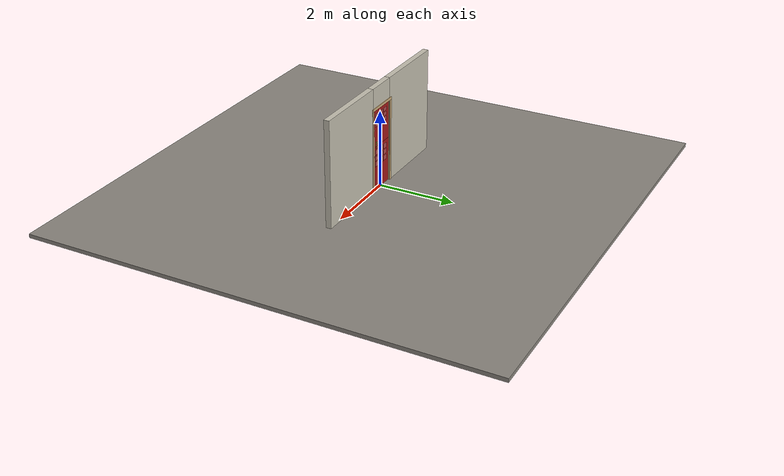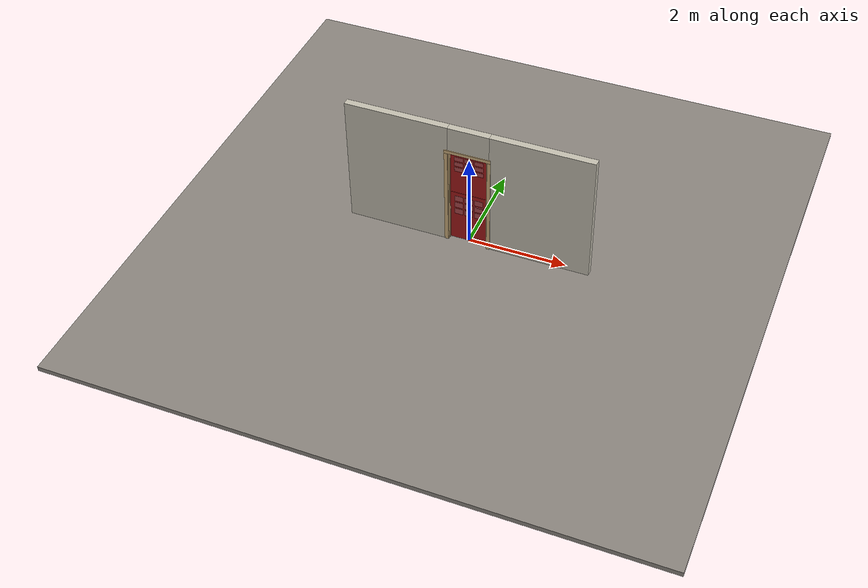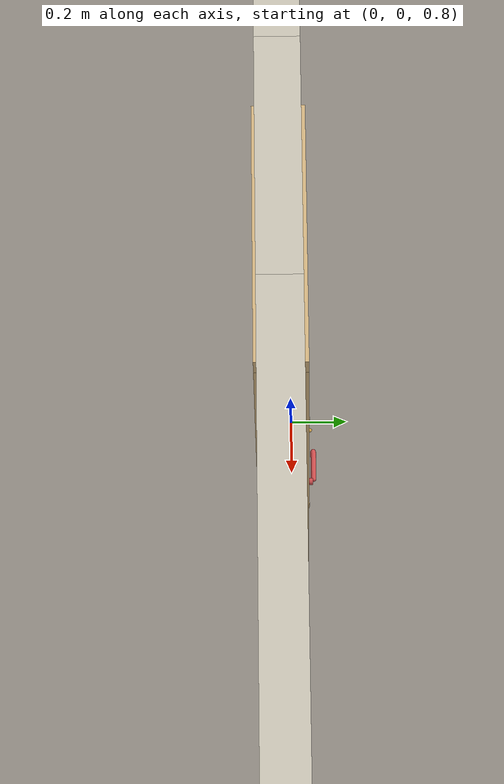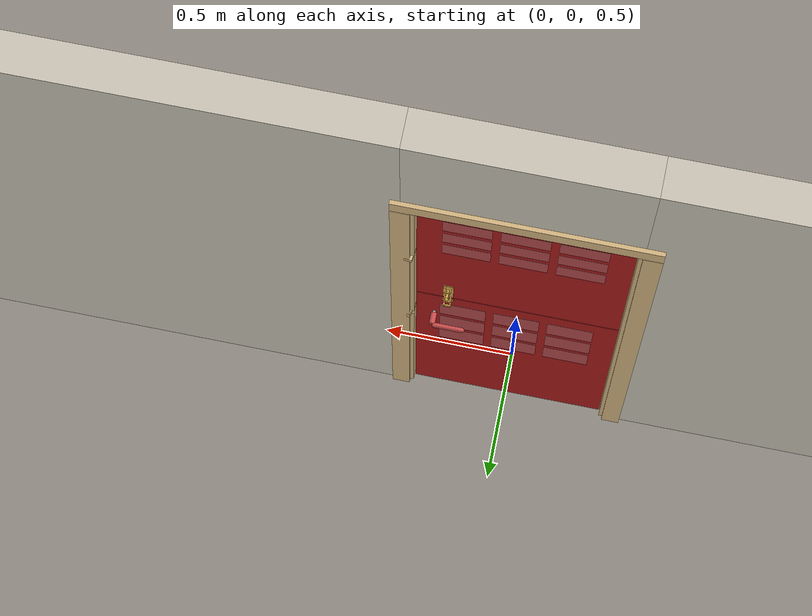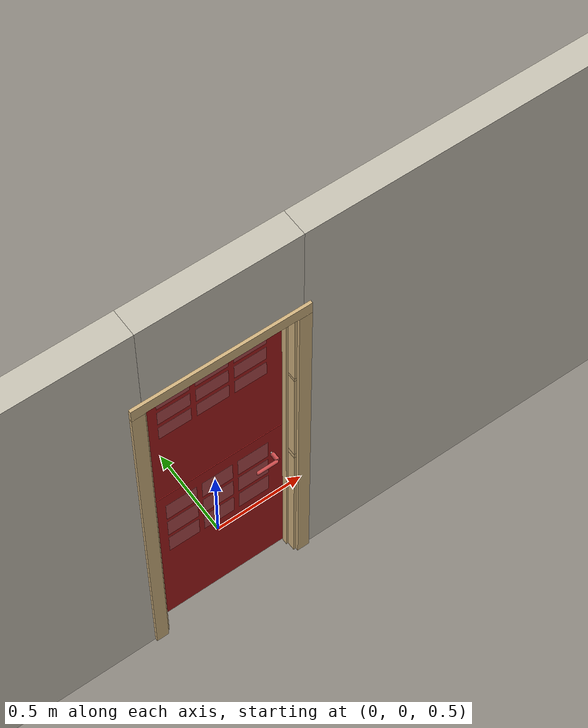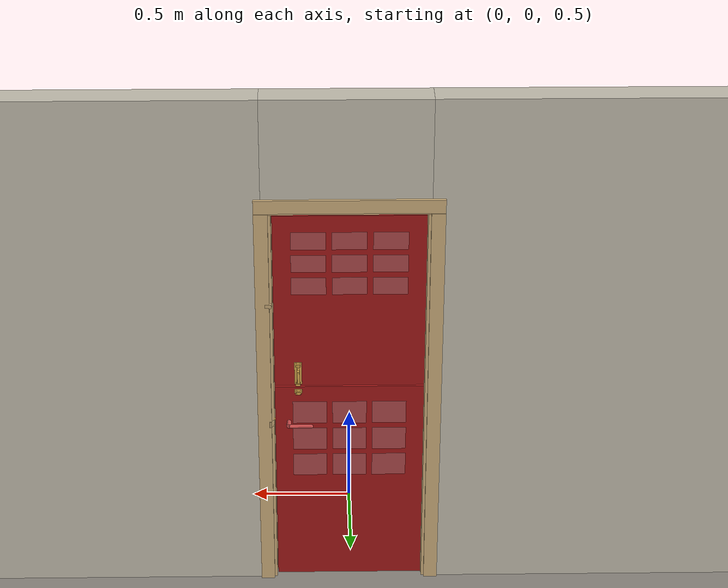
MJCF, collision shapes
<?xml version="1.0" ?>
<mujoco model="db0391_dutch_full">
  <compiler angle="radian" meshdir="../../hardware" texturedir="../../textures" autolimits="true" inertiafromgeom="false"/>
  <option timestep="0.002" integrator="implicitfast" cone="elliptic" impratio="10" noslip_iterations="3">
    <flag multiccd="enable"/>
  </option>
  <size memory="16M"/>
  <default>
    <geom condim="4" solref="0.005 1" solimp="0.95 0.99 0.001"/>
    <joint solreflimit="0.005 1" solimplimit="0.95 0.99 0.001"/>
    <tendon solreflimit="0.005 1"/>
    <equality solref="0.002 1"/>
  </default>
  <visual>
    <headlight ambient="0.4 0.4 0.4" diffuse="0.7 0.7 0.7" specular="0.2 0.2 0.2"/>
    <quality shadowsize="4096"/>
    <map znear="0.01" zfar="60"/>
  </visual>
  <asset>
    <mesh name="hinge_2af0f4d6ca" file="hinge_2af0f4d6ca.obj"/>
    <mesh name="hinge_jamb_c0c0a62ada" file="hinge_jamb_c0c0a62ada.obj"/>
    <mesh name="lever_9f02b544cf" file="lever_9f02b544cf.obj"/>
    <material name="mat_floor" rgba="0.55 0.53 0.5 1" specular="0.2" shininess="0.15" reflectance="0"/>
    <material name="mat_wall" rgba="0.78 0.76 0.7 1" specular="0.2" shininess="0.1" reflectance="0"/>
    <material name="mat_leaf_lower" rgba="0.65 0.1 0.1 1" specular="0.2" shininess="0.32" reflectance="0"/>
    <material name="mat_glass" rgba="0.85 0.92 0.95 0.25" specular="0.2" shininess="0.95" reflectance="0.1"/>
    <material name="mat_leaf_upper" rgba="0.65 0.1 0.1 1" specular="0.2" shininess="0.32" reflectance="0"/>
    <material name="mat_op_nickel_satin" rgba="0.72 0.7 0.66 1" specular="0.8" shininess="0.65" reflectance="0.4"/>
    <material name="mat_trim" rgba="0.85 0.66 0.3 1" specular="0.8" shininess="0.75" reflectance="0.4"/>
    <material name="mat_bolt" rgba="0.85 0.66 0.3 1" specular="0.8" shininess="0.75" reflectance="0.4"/>
    <material name="mat_joinbolt" rgba="0.85 0.66 0.3 1" specular="0.8" shininess="0.75" reflectance="0.4"/>
    <material name="mat_frame" rgba="0.82 0.7 0.5 1" specular="0.2" shininess="0.45" reflectance="0"/>
    <material name="mat_hinge" rgba="0.65 0.66 0.68 1" specular="0.74" shininess="0.5" reflectance="0.36"/>
    <texture name="skybox" type="skybox" builtin="gradient" rgb1="0.6 0.7 0.85" rgb2="0.9 0.92 0.95" width="256" height="256"/>
  </asset>
  <worldbody>
    <light name="sun" pos="1.5 -2.5 4" dir="-0.3 0.5 -0.8" directional="true" diffuse="0.8 0.8 0.8" specular="0.3 0.3 0.3" castshadow="true"/>
    <light name="fill" pos="-1.5 2.5 3" dir="0.3 -0.5 -0.7" directional="true" diffuse="0.35 0.35 0.4" castshadow="false"/>
    <camera name="robot_view" pos="0 -2.668312 1.812087" xyaxes="1 0 0 0 0.26963 0.962964" fovy="52"/>
    <camera name="far_view" pos="0 2.607312 1.812087" xyaxes="-1 0 0 0 -0.26963 0.962964" fovy="52"/>
    <camera name="iso" pos="2.004737 -2.246262 2.234138" xyaxes="0.741536 0.670913 0 -0.242917 0.268487 0.932151" fovy="46"/>
    <camera name="detail_handle" pos="0.39 -0.877 1.245" xyaxes="0.97561 0.219512 0 -0.070934 0.315262 0.94635" fovy="38"/>
    <geom name="floor" type="box" size="6 6 0.05" pos="0 0 -0.05" material="mat_floor" group="0" contype="1" conaffinity="1" friction="0.8 0.005 0.0001" density="2400"/>
    <geom name="wall_left" type="box" size="1.048 0.0725 1.3735" pos="-1.452 -0.0305 1.3735" material="mat_wall" group="0" contype="1" conaffinity="1" friction="0.6 0.005 0.0001" density="800"/>
    <geom name="wall_right" type="box" size="1.033 0.0725 1.3735" pos="1.467 -0.0305 1.3735" material="mat_wall" group="0" contype="1" conaffinity="1" friction="0.6 0.005 0.0001" density="800"/>
    <geom name="wall_header" type="box" size="0.419 0.0725 0.2755" pos="0.015 -0.0305 2.4715" material="mat_wall" group="0" contype="1" conaffinity="1" friction="0.6 0.005 0.0001" density="800"/>
    <geom name="jamb_hinge" type="box" size="0.0095 0.0725 1.0735" pos="-0.3945 -0.0305 1.0735" material="mat_frame" group="0" contype="1" conaffinity="1" friction="0.6 0.005 0.0001" density="400"/>
    <geom name="strike_965_wall_n" type="box" size="0.0245 0.047575 0.0167" pos="0.4095 -0.055425 0.965" material="mat_frame" group="0" contype="1" conaffinity="1" friction="0.6 0.005 0.0001" density="400"/>
    <geom name="strike_965_wall_p" type="box" size="0.0245 0.008 0.0167" pos="0.4095 0.01585 0.965" material="mat_frame" group="0" contype="1" conaffinity="1" friction="0.6 0.005 0.0001" density="400"/>
    <geom name="strike_965_ramp" type="box" size="0.0245 0.020268 0.0167" pos="0.414908 0.034645 0.965" quat="0.985179 0 0 -0.171531" material="mat_frame" group="0" contype="1" conaffinity="1" friction="0.12 0.005 0.0001" density="400"/>
    <geom name="strike_965_back" type="box" size="0.01615 0.00785 0.0167" pos="0.41785 0 0.965" material="mat_frame" group="0" contype="1" conaffinity="1" friction="0.6 0.005 0.0001" density="400"/>
    <geom name="strike_1654_wall_n" type="box" size="0.0245 0.04775 0.01" pos="0.4095 -0.05525 1.654" material="mat_frame" group="0" contype="1" conaffinity="1" friction="0.6 0.005 0.0001" density="400"/>
    <geom name="strike_1654_wall_p" type="box" size="0.0245 0.008 0.01" pos="0.4095 0.0155 1.654" material="mat_frame" group="0" contype="1" conaffinity="1" friction="0.6 0.005 0.0001" density="400"/>
    <geom name="strike_1654_ramp" type="box" size="0.0245 0.019412 0.01" pos="0.411796 0.039595 1.654" quat="0.997916 0 0 -0.064529" material="mat_frame" group="0" contype="1" conaffinity="1" friction="0.12 0.005 0.0001" density="400"/>
    <geom name="strike_1654_ramp_n" type="box" size="0.0245 0.019412 0.01" pos="0.411796 -0.027595 1.654" quat="0.997916 0 0 0.064529" material="mat_frame" group="0" contype="1" conaffinity="1" friction="0.12 0.005 0.0001" density="400"/>
    <geom name="strike_1654_back" type="box" size="0.0205 0.0075 0.01" pos="0.4135 0 1.654" material="mat_frame" group="0" contype="1" conaffinity="1" friction="0.6 0.005 0.0001" density="400"/>
    <geom name="jamb_strike_0" type="box" size="0.0245 0.0725 0.47415" pos="0.4095 -0.0305 0.47415" material="mat_frame" group="0" contype="1" conaffinity="1" friction="0.6 0.005 0.0001" density="400"/>
    <geom name="jamb_strike_1" type="box" size="0.0245 0.0725 0.33115" pos="0.4095 -0.0305 1.31285" material="mat_frame" group="0" contype="1" conaffinity="1" friction="0.6 0.005 0.0001" density="400"/>
    <geom name="jamb_strike_2" type="box" size="0.0245 0.0725 0.2415" pos="0.4095 -0.0305 1.9055" material="mat_frame" group="0" contype="1" conaffinity="1" friction="0.6 0.005 0.0001" density="400"/>
    <geom name="jamb_head" type="box" size="0.419 0.0725 0.0095" pos="0.015 -0.0305 2.1565" material="mat_frame" group="0" contype="1" conaffinity="1" friction="0.6 0.005 0.0001" density="400"/>
    <geom name="head_stud" type="box" size="0.419 0.0725 0.015" pos="0.015 -0.0305 2.181" material="mat_wall" group="0" contype="1" conaffinity="1" friction="0.6 0.005 0.0001" density="500"/>
    <geom name="stop_hinge" type="box" size="0.0055 0.016 1.0735" pos="-0.3795 -0.0385 1.0735" material="mat_frame" group="0" contype="1" conaffinity="1" friction="0.6 0.005 0.0001" density="400"/>
    <geom name="stop_strike" type="box" size="0.0055 0.016 1.0735" pos="0.3795 -0.0385 1.0735" material="mat_frame" group="0" contype="1" conaffinity="1" friction="0.6 0.005 0.0001" density="400"/>
    <geom name="stop_head" type="box" size="0.385 0.016 0.0055" pos="0 -0.0385 2.1415" material="mat_frame" group="0" contype="1" conaffinity="1" friction="0.6 0.005 0.0001" density="400"/>
    <geom name="casing_l_n" type="box" size="0.035 0.008 1.083" pos="-0.434 -0.111 1.0735" material="mat_frame" group="2" contype="0" conaffinity="0" density="400"/>
    <geom name="casing_r_n" type="box" size="0.035 0.008 1.083" pos="0.434 -0.111 1.0735" material="mat_frame" group="2" contype="0" conaffinity="0" density="400"/>
    <geom name="casing_h_n" type="box" size="0.469 0.008 0.035" pos="0 -0.111 2.196" material="mat_frame" group="2" contype="0" conaffinity="0" density="400"/>
    <geom name="casing_l_p" type="box" size="0.035 0.008 1.083" pos="-0.434 0.05 1.0735" material="mat_frame" group="2" contype="0" conaffinity="0" density="400"/>
    <geom name="casing_r_p" type="box" size="0.035 0.008 1.083" pos="0.434 0.05 1.0735" material="mat_frame" group="2" contype="0" conaffinity="0" density="400"/>
    <geom name="casing_h_p" type="box" size="0.469 0.008 0.035" pos="0 0.05 2.196" material="mat_frame" group="2" contype="0" conaffinity="0" density="400"/>
    <geom name="hinge_0_jamb" type="mesh" mesh="hinge_jamb_c0c0a62ada" pos="-0.385 0.029 0.262" quat="0 1 0 0" material="mat_hinge" group="1" contype="0" conaffinity="0" density="7850"/>
    <geom name="hinge_1_jamb" type="mesh" mesh="hinge_jamb_c0c0a62ada" pos="-0.385 0.029 0.504667" quat="0 1 0 0" material="mat_hinge" group="1" contype="0" conaffinity="0" density="7850"/>
    <geom name="hinge_2_jamb" type="mesh" mesh="hinge_jamb_c0c0a62ada" pos="-0.385 0.029 0.747333" quat="0 1 0 0" material="mat_hinge" group="1" contype="0" conaffinity="0" density="7850"/>
    <geom name="hinge_3_jamb" type="mesh" mesh="hinge_jamb_c0c0a62ada" pos="-0.385 0.029 0.99" quat="0 1 0 0" material="mat_hinge" group="1" contype="0" conaffinity="0" density="7850"/>
    <geom name="hinge_0_jamb_2" type="mesh" mesh="hinge_jamb_c0c0a62ada" pos="-0.385 0.029 1.428" quat="0 1 0 0" material="mat_hinge" group="1" contype="0" conaffinity="0" density="7850"/>
    <geom name="hinge_1_jamb_2" type="mesh" mesh="hinge_jamb_c0c0a62ada" pos="-0.385 0.029 1.603333" quat="0 1 0 0" material="mat_hinge" group="1" contype="0" conaffinity="0" density="7850"/>
    <geom name="hinge_2_jamb_2" type="mesh" mesh="hinge_jamb_c0c0a62ada" pos="-0.385 0.029 1.778667" quat="0 1 0 0" material="mat_hinge" group="1" contype="0" conaffinity="0" density="7850"/>
    <geom name="hinge_3_jamb_2" type="mesh" mesh="hinge_jamb_c0c0a62ada" pos="-0.385 0.029 1.954" quat="0 1 0 0" material="mat_hinge" group="1" contype="0" conaffinity="0" density="7850"/>
    <site name="approach_point" pos="0 -1.5 0" quat="1 0 0 0" size="0.05" rgba="0.2 0.9 0.2 0.5" group="4"/>
    <site name="goal_point" pos="0 1.5 0" quat="1 0 0 0" size="0.05" rgba="0.2 0.9 0.2 0.5" group="4"/>
    <site name="door_plane_center" pos="0 0 1.0735" quat="1 0 0 0" size="0.02" rgba="0.2 0.9 0.2 0.5" group="4"/>
    <body name="leaf_lower" pos="-0.385 0 0">
      <inertial pos="0.090639 0.015737 0.675269" mass="25.71481" quat="-0.373983 -0.369159 -0.600529 0.60268" diaginertia="0.902576948 2.687159468 3.57563409"/>
      <joint name="leaf_lower_hinge" type="hinge" axis="0 0 1" pos="0.003 0.029 0" limited="true" range="0 1.745329" damping="0.179937" frictionloss="0.675902" armature="0.02"/>
      <geom name="leaf_lower_slab" type="box" size="0.381 0.022 0.579" pos="0.384 0 0.591" material="mat_leaf_lower" group="0" contype="1" conaffinity="1" friction="0.4 0.005 0.0001" density="1"/>
      <geom name="leaf_lower_glass_0" type="box" size="0.087 0.0228 0.064" pos="0.18 0 0.7" material="mat_glass" group="1" contype="0" conaffinity="0" density="1"/>
      <geom name="leaf_lower_glass_1" type="box" size="0.087 0.0228 0.064" pos="0.384 0 0.7" material="mat_glass" group="1" contype="0" conaffinity="0" density="1"/>
      <geom name="leaf_lower_glass_2" type="box" size="0.087 0.0228 0.064" pos="0.588 0 0.7" material="mat_glass" group="1" contype="0" conaffinity="0" density="1"/>
      <geom name="leaf_lower_glass_3" type="box" size="0.087 0.0228 0.064" pos="0.18 0 0.858" material="mat_glass" group="1" contype="0" conaffinity="0" density="1"/>
      <geom name="leaf_lower_glass_4" type="box" size="0.087 0.0228 0.064" pos="0.384 0 0.858" material="mat_glass" group="1" contype="0" conaffinity="0" density="1"/>
      <geom name="leaf_lower_glass_5" type="box" size="0.087 0.0228 0.064" pos="0.588 0 0.858" material="mat_glass" group="1" contype="0" conaffinity="0" density="1"/>
      <geom name="leaf_lower_glass_6" type="box" size="0.087 0.0228 0.064" pos="0.18 0 1.016" material="mat_glass" group="1" contype="0" conaffinity="0" density="1"/>
      <geom name="leaf_lower_glass_7" type="box" size="0.087 0.0228 0.064" pos="0.384 0 1.016" material="mat_glass" group="1" contype="0" conaffinity="0" density="1"/>
      <geom name="leaf_lower_glass_8" type="box" size="0.087 0.0228 0.064" pos="0.588 0 1.016" material="mat_glass" group="1" contype="0" conaffinity="0" density="1"/>
      <geom name="lower_latch_bolt_faceplate" type="box" size="0.0006 0.01235 0.0267" pos="0.7644 0 0.965" material="mat_bolt" group="1" contype="0" conaffinity="0" density="8500"/>
      <geom name="join_keeper_leg_n" type="box" size="0.007 0.0025 0.013" pos="0.6565 0.035 1.144" quat="0.5 -0.5 0.5 0.5" material="mat_joinbolt" group="0" contype="1" conaffinity="1" friction="0.6 0.005 0.0001" density="7800"/>
      <geom name="join_keeper_leg_p" type="box" size="0.007 0.0025 0.013" pos="0.6335 0.035 1.144" quat="0.5 -0.5 0.5 0.5" material="mat_joinbolt" group="0" contype="1" conaffinity="1" friction="0.6 0.005 0.0001" density="7800"/>
      <geom name="join_keeper_bridge" type="box" size="0.007 0.014 0.0025" pos="0.645 0.0455 1.144" quat="0.5 -0.5 0.5 0.5" material="mat_joinbolt" group="0" contype="1" conaffinity="1" friction="0.6 0.005 0.0001" density="7800"/>
      <geom name="join_keeper_base" type="box" size="0.013 0.02 0.001" pos="0.645 0.023 1.144" quat="0.5 -0.5 0.5 0.5" material="mat_joinbolt" group="1" contype="0" conaffinity="0" density="7800"/>
      <geom name="hinge_0" type="mesh" mesh="hinge_2af0f4d6ca" pos="0 0.029 0.262" quat="0 1 0 0" material="mat_hinge" group="1" contype="0" conaffinity="0" density="7850"/>
      <geom name="hinge_1" type="mesh" mesh="hinge_2af0f4d6ca" pos="0 0.029 0.504667" quat="0 1 0 0" material="mat_hinge" group="1" contype="0" conaffinity="0" density="7850"/>
      <geom name="hinge_2" type="mesh" mesh="hinge_2af0f4d6ca" pos="0 0.029 0.747333" quat="0 1 0 0" material="mat_hinge" group="1" contype="0" conaffinity="0" density="7850"/>
      <geom name="hinge_3" type="mesh" mesh="hinge_2af0f4d6ca" pos="0 0.029 0.99" quat="0 1 0 0" material="mat_hinge" group="1" contype="0" conaffinity="0" density="7850"/>
      <body name="lower_handle" pos="0.695 0 0.965">
        <inertial pos="-0.028544 0 0" mass="0.978187" quat="0 0.707107 0.707107 0" diaginertia="0.001772047 0.003604455 0.005198299"/>
        <joint name="lower_handle_hinge" type="hinge" axis="0 -1 0" limited="true" range="0 0.96" damping="0.245624" frictionloss="0.048" stiffness="1.2" springref="-0.458333" armature="0.01"/>
        <geom name="lower_handle_spindle" type="cylinder" size="0.006 0.03" pos="0 0 0" quat="0.707107 -0.707107 0 0" material="mat_op_nickel_satin" group="1" contype="0" conaffinity="0" density="7850"/>
        <geom name="lower_handle_lever_n" type="mesh" mesh="lever_9f02b544cf" pos="0 -0.022 0" quat="0.707107 0.707107 0 0" material="mat_op_nickel_satin" group="1" contype="0" conaffinity="0" density="3000"/>
        <geom name="lower_handle_lever_col_n" type="capsule" size="0.0095 0.053" pos="-0.0625 -0.077 0" quat="0.707107 0 -0.707107 0" material="mat_op_nickel_satin" group="3" contype="1" conaffinity="1" rgba="0.8 0.3 0.3 0.25" friction="0.7 0.01 0.0001" density="3000"/>
        <geom name="lower_handle_hub_col_n" type="cylinder" size="0.012 0.022" pos="0 -0.052 0" quat="0.707107 -0.707107 0 0" material="mat_op_nickel_satin" group="3" contype="1" conaffinity="1" rgba="0.8 0.3 0.3 0.25" friction="0.6 0.005 0.0001" density="3000"/>
        <geom name="lower_handle_lever_p" type="mesh" mesh="lever_9f02b544cf" pos="0 0.022 0" quat="-0.707107 0.707107 0 0" material="mat_op_nickel_satin" group="1" contype="0" conaffinity="0" density="3000"/>
        <geom name="lower_handle_lever_col_p" type="capsule" size="0.0095 0.053" pos="-0.0625 0.077 0" quat="0.707107 0 -0.707107 0" material="mat_op_nickel_satin" group="3" contype="1" conaffinity="1" rgba="0.8 0.3 0.3 0.25" friction="0.7 0.01 0.0001" density="3000"/>
        <geom name="lower_handle_hub_col_p" type="cylinder" size="0.012 0.022" pos="0 0.052 0" quat="0.707107 -0.707107 0 0" material="mat_op_nickel_satin" group="3" contype="1" conaffinity="1" rgba="0.8 0.3 0.3 0.25" friction="0.6 0.005 0.0001" density="3000"/>
        <site name="lower_handle_grip_n" pos="-0.1 -0.077 0" quat="1 0 0 0" size="0.012" rgba="0.2 0.9 0.2 0.5" group="4"/>
        <site name="lower_handle_grip_p" pos="-0.1 0.077 0" quat="1 0 0 0" size="0.012" rgba="0.2 0.9 0.2 0.5" group="4"/>
      </body>
      <body name="lower_latch_bolt" pos="0.765 0 0.965">
        <inertial pos="-0.00865 0 0" mass="0.041419" quat="0.92388 -0.382683 0 0" diaginertia="0.000000798 0.000005598 0.000005598"/>
        <joint name="lower_latch_bolt_slide" type="slide" axis="-1 0 0" limited="true" range="0 0.0127" damping="2" frictionloss="0.3" stiffness="300" springref="-0.008333" armature="0.1"/>
        <geom name="lower_latch_bolt_capsule" type="capsule" size="0.00635 0.015" pos="-0.00865 0 0" quat="0.707107 0 0.707107 0" material="mat_bolt" group="0" contype="1" conaffinity="1" friction="0.2 0.005 0.0001" density="8500"/>
      </body>
    </body>
    <body name="leaf_upper" pos="-0.385 0 0">
      <inertial pos="0.134811 0.016872 1.617209" mass="20.808837" quat="0.661637 -0.656434 0.252488 0.259962" diaginertia="0.55507104 2.131879545 2.676676848"/>
      <joint name="leaf_upper_hinge" type="hinge" axis="0 0 1" pos="0.003 0.029 0" limited="true" range="0 1.745329" damping="0.179937" frictionloss="0.675902" armature="0.02"/>
      <geom name="leaf_upper_slab" type="box" size="0.381 0.022 0.478" pos="0.384 0 1.656" material="mat_leaf_upper" group="0" contype="1" conaffinity="1" friction="0.4 0.005 0.0001" density="1"/>
      <geom name="leaf_upper_glass_0" type="box" size="0.087 0.0228 0.047167" pos="0.18 0 1.748167" material="mat_glass" group="1" contype="0" conaffinity="0" density="1"/>
      <geom name="leaf_upper_glass_1" type="box" size="0.087 0.0228 0.047167" pos="0.384 0 1.748167" material="mat_glass" group="1" contype="0" conaffinity="0" density="1"/>
      <geom name="leaf_upper_glass_2" type="box" size="0.087 0.0228 0.047167" pos="0.588 0 1.748167" material="mat_glass" group="1" contype="0" conaffinity="0" density="1"/>
      <geom name="leaf_upper_glass_3" type="box" size="0.087 0.0228 0.047167" pos="0.18 0 1.8725" material="mat_glass" group="1" contype="0" conaffinity="0" density="1"/>
      <geom name="leaf_upper_glass_4" type="box" size="0.087 0.0228 0.047167" pos="0.384 0 1.8725" material="mat_glass" group="1" contype="0" conaffinity="0" density="1"/>
      <geom name="leaf_upper_glass_5" type="box" size="0.087 0.0228 0.047167" pos="0.588 0 1.8725" material="mat_glass" group="1" contype="0" conaffinity="0" density="1"/>
      <geom name="leaf_upper_glass_6" type="box" size="0.087 0.0228 0.047167" pos="0.18 0 1.996833" material="mat_glass" group="1" contype="0" conaffinity="0" density="1"/>
      <geom name="leaf_upper_glass_7" type="box" size="0.087 0.0228 0.047167" pos="0.384 0 1.996833" material="mat_glass" group="1" contype="0" conaffinity="0" density="1"/>
      <geom name="leaf_upper_glass_8" type="box" size="0.087 0.0228 0.047167" pos="0.588 0 1.996833" material="mat_glass" group="1" contype="0" conaffinity="0" density="1"/>
      <geom name="upper_catch_faceplate" type="box" size="0.0006 0.012 0.02" pos="0.7644 0 1.654" material="mat_bolt" group="1" contype="0" conaffinity="0" density="8500"/>
      <geom name="join_bolt_plate" type="box" size="0.064 0.019 0.001" pos="0.645 0.023 1.25" quat="0.5 -0.5 0.5 0.5" material="mat_joinbolt" group="1" contype="0" conaffinity="0" density="7800"/>
      <geom name="join_bolt_guide_0_leg_n" type="box" size="0.006 0.002 0.0125" pos="0.656 0.0345 1.194" quat="0.5 -0.5 0.5 0.5" material="mat_joinbolt" group="1" contype="0" conaffinity="0" density="7800"/>
      <geom name="join_bolt_guide_0_leg_p" type="box" size="0.006 0.002 0.0125" pos="0.634 0.0345 1.194" quat="0.5 -0.5 0.5 0.5" material="mat_joinbolt" group="1" contype="0" conaffinity="0" density="7800"/>
      <geom name="join_bolt_guide_0_bridge" type="box" size="0.006 0.013 0.002" pos="0.645 0.045 1.194" quat="0.5 -0.5 0.5 0.5" material="mat_joinbolt" group="1" contype="0" conaffinity="0" density="7800"/>
      <geom name="join_bolt_guide_1_leg_n" type="box" size="0.006 0.002 0.0125" pos="0.656 0.0345 1.304" quat="0.5 -0.5 0.5 0.5" material="mat_joinbolt" group="1" contype="0" conaffinity="0" density="7800"/>
      <geom name="join_bolt_guide_1_leg_p" type="box" size="0.006 0.002 0.0125" pos="0.634 0.0345 1.304" quat="0.5 -0.5 0.5 0.5" material="mat_joinbolt" group="1" contype="0" conaffinity="0" density="7800"/>
      <geom name="join_bolt_guide_1_bridge" type="box" size="0.006 0.013 0.002" pos="0.645 0.045 1.304" quat="0.5 -0.5 0.5 0.5" material="mat_joinbolt" group="1" contype="0" conaffinity="0" density="7800"/>
      <geom name="hinge_0_2" type="mesh" mesh="hinge_2af0f4d6ca" pos="0 0.029 1.428" quat="0 1 0 0" material="mat_hinge" group="1" contype="0" conaffinity="0" density="7850"/>
      <geom name="hinge_1_2" type="mesh" mesh="hinge_2af0f4d6ca" pos="0 0.029 1.603333" quat="0 1 0 0" material="mat_hinge" group="1" contype="0" conaffinity="0" density="7850"/>
      <geom name="hinge_2_2" type="mesh" mesh="hinge_2af0f4d6ca" pos="0 0.029 1.778667" quat="0 1 0 0" material="mat_hinge" group="1" contype="0" conaffinity="0" density="7850"/>
      <geom name="hinge_3_2" type="mesh" mesh="hinge_2af0f4d6ca" pos="0 0.029 1.954" quat="0 1 0 0" material="mat_hinge" group="1" contype="0" conaffinity="0" density="7850"/>
      <body name="upper_catch" pos="0.765 0 1.654">
        <inertial pos="-0.013 0 0" mass="0.02884" quat="0 0 0.707107 0.707107" diaginertia="0.000000491 0.000002465 0.000002465"/>
        <joint name="upper_catch_slide" type="slide" axis="-1 0 0" limited="true" range="0 0.004" damping="2" frictionloss="0.3" stiffness="4000" springref="-0.00375" armature="0.1"/>
        <geom name="upper_catch_capsule" type="capsule" size="0.006 0.011" pos="-0.013 0 0" quat="0.707107 0 0.707107 0" material="mat_bolt" group="0" contype="1" conaffinity="1" friction="0.2 0.005 0.0001" density="8500"/>
      </body>
      <body name="join_bolt" pos="0.645 0.034 1.178">
        <inertial pos="0 0.00492 0.075264" mass="0.111784" quat="0.065075 0.704106 0.065075 0.704106" diaginertia="0.000009833 0.000100603 0.000108548"/>
        <joint name="join_bolt_slide" type="slide" axis="0 0 1" limited="true" range="0 0.05" damping="1" frictionloss="1" armature="0.1" ref="0.05"/>
        <geom name="join_bolt_rod" type="capsule" size="0.006 0.044" pos="0 0 0.066" quat="0 1 0 0" material="mat_joinbolt" group="0" contype="1" conaffinity="1" friction="0.6 0.005 0.0001" density="7850"/>
        <geom name="join_bolt_knob" type="capsule" size="0.005 0.01" pos="0 0.015 0.105" quat="0.707107 -0.707107 0 0" material="mat_joinbolt" group="0" contype="1" conaffinity="1" friction="0.6 0.005 0.0001" density="7850"/>
        <geom name="join_bolt_knob_end" type="sphere" size="0.00675" pos="0 0.03 0.105" material="mat_joinbolt" group="1" contype="0" conaffinity="0" density="7850"/>
        <site name="join_bolt_grip" pos="0 0.034 0.105" quat="1 0 0 0" size="0.012" rgba="0.2 0.9 0.2 0.5" group="4"/>
      </body>
    </body>
  </worldbody>
  <tendon>
    <fixed name="lower_latch_bolt_coupling" limited="true" range="0 10">
      <joint joint="lower_latch_bolt_slide" coef="1"/>
      <joint joint="lower_handle_hinge" coef="-0.013956"/>
    </fixed>
  </tendon>
  <sensor>
    <jointpos name="leaf_lower_hinge_pos" joint="leaf_lower_hinge"/>
    <jointvel name="leaf_lower_hinge_vel" joint="leaf_lower_hinge"/>
    <jointpos name="leaf_upper_hinge_pos" joint="leaf_upper_hinge"/>
    <jointvel name="leaf_upper_hinge_vel" joint="leaf_upper_hinge"/>
    <jointpos name="lower_handle_hinge_pos" joint="lower_handle_hinge"/>
    <jointvel name="lower_handle_hinge_vel" joint="lower_handle_hinge"/>
    <jointpos name="lower_latch_bolt_slide_pos" joint="lower_latch_bolt_slide"/>
    <jointvel name="lower_latch_bolt_slide_vel" joint="lower_latch_bolt_slide"/>
    <jointpos name="upper_catch_slide_pos" joint="upper_catch_slide"/>
    <jointvel name="upper_catch_slide_vel" joint="upper_catch_slide"/>
    <jointpos name="join_bolt_slide_pos" joint="join_bolt_slide"/>
    <jointvel name="join_bolt_slide_vel" joint="join_bolt_slide"/>
  </sensor>
</mujoco>
